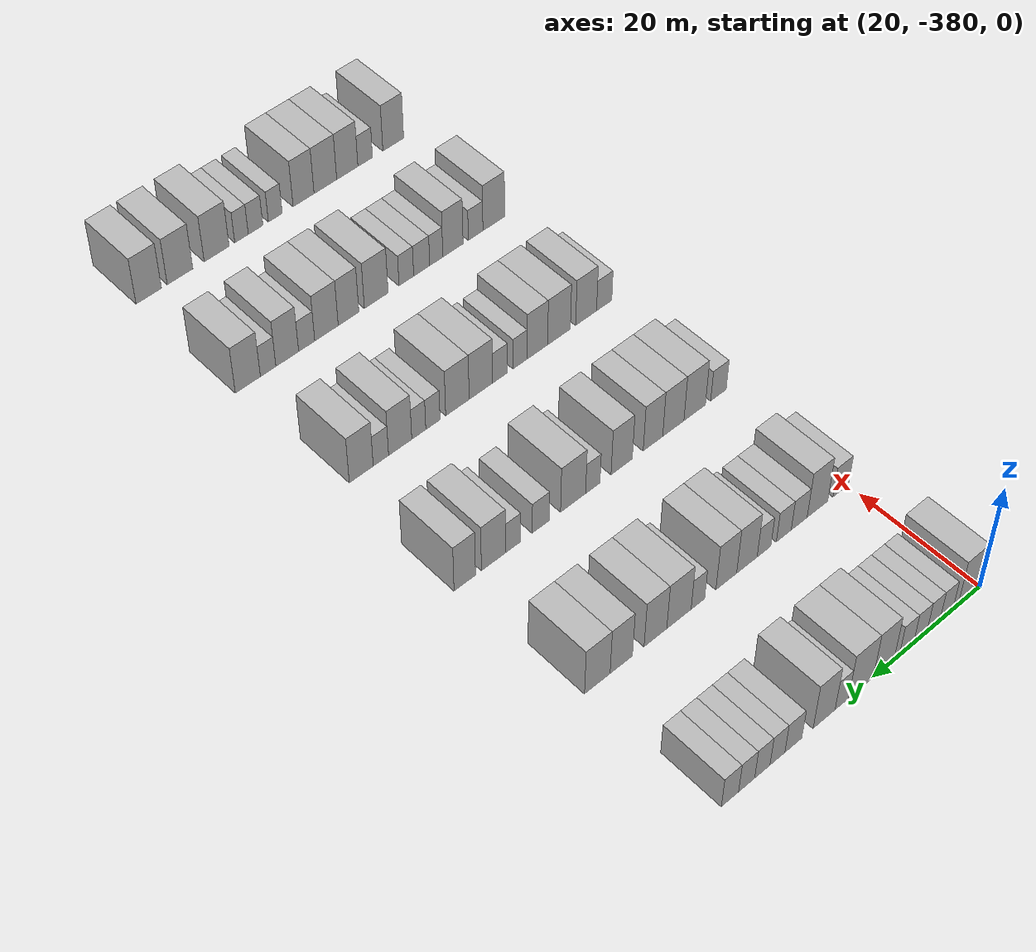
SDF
<sdf version="1.6">
 <world name="default">
  <model name="building_1">
   <static>1</static>
   <pose>25.0000 -377.9437 0 0.000000 0.000000 0.000000</pose>
   <link name="link">
    <pose>0 0 4.50 0 0 0</pose>
    <collision name="collision"><geometry><box><size>10.0000 4.1127 9.0000</size></box></geometry></collision>
    <visual name="visual">
     <cast_shadows>0</cast_shadows>
     <geometry><box><size>10.0000 4.1127 9.0000</size></box></geometry>
     <material>
      <script>
       <uri>model://HANNAS_wall/materials/scripts</uri>
       <uri>model://HANNAS_wall/materials/textures</uri>
       <name>vrc/HANNAS_wall</name>
      </script>
     </material>
    </visual>
   </link>
  </model>
  <model name="building_2">
   <static>1</static>
   <pose>25.0000 -373.6596 0 0.000000 0.000000 0.000000</pose>
   <link name="link">
    <pose>0 0 3.00 0 0 0</pose>
    <collision name="collision"><geometry><box><size>10.0000 2.4554 6.0000</size></box></geometry></collision>
    <visual name="visual">
     <cast_shadows>0</cast_shadows>
     <geometry><box><size>10.0000 2.4554 6.0000</size></box></geometry>
     <material>
      <script>
       <uri>model://HANNAS_wall/materials/scripts</uri>
       <uri>model://HANNAS_wall/materials/textures</uri>
       <name>vrc/HANNAS_wall</name>
      </script>
     </material>
    </visual>
   </link>
  </model>
  <model name="building_3">
   <static>1</static>
   <pose>25.0000 -371.2207 0 0.000000 0.000000 0.000000</pose>
   <link name="link">
    <pose>0 0 3.00 0 0 0</pose>
    <collision name="collision"><geometry><box><size>10.0000 2.4226 6.0000</size></box></geometry></collision>
    <visual name="visual">
     <cast_shadows>0</cast_shadows>
     <geometry><box><size>10.0000 2.4226 6.0000</size></box></geometry>
     <material>
      <script>
       <uri>model://HANNAS_wall/materials/scripts</uri>
       <uri>model://HANNAS_wall/materials/textures</uri>
       <name>vrc/HANNAS_wall</name>
      </script>
     </material>
    </visual>
   </link>
  </model>
  <model name="building_4">
   <static>1</static>
   <pose>25.0000 -368.7682 0 0.000000 0.000000 0.000000</pose>
   <link name="link">
    <pose>0 0 3.00 0 0 0</pose>
    <collision name="collision"><geometry><box><size>10.0000 2.4823 6.0000</size></box></geometry></collision>
    <visual name="visual">
     <cast_shadows>0</cast_shadows>
     <geometry><box><size>10.0000 2.4823 6.0000</size></box></geometry>
     <material>
      <script>
       <uri>model://HANNAS_wall/materials/scripts</uri>
       <uri>model://HANNAS_wall/materials/textures</uri>
       <name>vrc/HANNAS_wall</name>
      </script>
     </material>
    </visual>
   </link>
  </model>
  <model name="building_5">
   <static>1</static>
   <pose>25.0000 -366.2189 0 0.000000 0.000000 0.000000</pose>
   <link name="link">
    <pose>0 0 3.00 0 0 0</pose>
    <collision name="collision"><geometry><box><size>10.0000 2.6164 6.0000</size></box></geometry></collision>
    <visual name="visual">
     <cast_shadows>0</cast_shadows>
     <geometry><box><size>10.0000 2.6164 6.0000</size></box></geometry>
     <material>
      <script>
       <uri>model://HANNAS_wall/materials/scripts</uri>
       <uri>model://HANNAS_wall/materials/textures</uri>
       <name>vrc/HANNAS_wall</name>
      </script>
     </material>
    </visual>
   </link>
  </model>
  <model name="building_6">
   <static>1</static>
   <pose>25.0000 -362.0247 0 0.000000 0.000000 0.000000</pose>
   <link name="link">
    <pose>0 0 4.50 0 0 0</pose>
    <collision name="collision"><geometry><box><size>10.0000 3.7720 9.0000</size></box></geometry></collision>
    <visual name="visual">
     <cast_shadows>0</cast_shadows>
     <geometry><box><size>10.0000 3.7720 9.0000</size></box></geometry>
     <material>
      <script>
       <uri>model://HANNAS_wall/materials/scripts</uri>
       <uri>model://HANNAS_wall/materials/textures</uri>
       <name>vrc/HANNAS_wall</name>
      </script>
     </material>
    </visual>
   </link>
  </model>
  <model name="building_7">
   <static>1</static>
   <pose>25.0000 -357.9072 0 0.000000 0.000000 0.000000</pose>
   <link name="link">
    <pose>0 0 4.50 0 0 0</pose>
    <collision name="collision"><geometry><box><size>10.0000 4.4630 9.0000</size></box></geometry></collision>
    <visual name="visual">
     <cast_shadows>0</cast_shadows>
     <geometry><box><size>10.0000 4.4630 9.0000</size></box></geometry>
     <material>
      <script>
       <uri>model://HANNAS_wall/materials/scripts</uri>
       <uri>model://HANNAS_wall/materials/textures</uri>
       <name>vrc/HANNAS_wall</name>
      </script>
     </material>
    </visual>
   </link>
  </model>
  <model name="building_8">
   <static>1</static>
   <pose>25.0000 -354.4737 0 0.000000 0.000000 0.000000</pose>
   <link name="link">
    <pose>0 0 3.00 0 0 0</pose>
    <collision name="collision"><geometry><box><size>10.0000 2.4039 6.0000</size></box></geometry></collision>
    <visual name="visual">
     <cast_shadows>0</cast_shadows>
     <geometry><box><size>10.0000 2.4039 6.0000</size></box></geometry>
     <material>
      <script>
       <uri>model://HANNAS_wall/materials/scripts</uri>
       <uri>model://HANNAS_wall/materials/textures</uri>
       <name>vrc/HANNAS_wall</name>
      </script>
     </material>
    </visual>
   </link>
  </model>
  <model name="building_9">
   <static>1</static>
   <pose>25.0000 -351.3434 0 0.000000 0.000000 0.000000</pose>
   <link name="link">
    <pose>0 0 4.50 0 0 0</pose>
    <collision name="collision"><geometry><box><size>10.0000 3.8568 9.0000</size></box></geometry></collision>
    <visual name="visual">
     <cast_shadows>0</cast_shadows>
     <geometry><box><size>10.0000 3.8568 9.0000</size></box></geometry>
     <material>
      <script>
       <uri>model://HANNAS_wall/materials/scripts</uri>
       <uri>model://HANNAS_wall/materials/textures</uri>
       <name>vrc/HANNAS_wall</name>
      </script>
     </material>
    </visual>
   </link>
  </model>
  <model name="building_10">
   <static>1</static>
   <pose>25.0000 -345.9481 0 0.000000 0.000000 0.000000</pose>
   <link name="link">
    <pose>0 0 3.00 0 0 0</pose>
    <collision name="collision"><geometry><box><size>10.0000 2.9336 6.0000</size></box></geometry></collision>
    <visual name="visual">
     <cast_shadows>0</cast_shadows>
     <geometry><box><size>10.0000 2.9336 6.0000</size></box></geometry>
     <material>
      <script>
       <uri>model://HANNAS_wall/materials/scripts</uri>
       <uri>model://HANNAS_wall/materials/textures</uri>
       <name>vrc/HANNAS_wall</name>
      </script>
     </material>
    </visual>
   </link>
  </model>
  <model name="building_11">
   <static>1</static>
   <pose>25.0000 -343.1982 0 0.000000 0.000000 0.000000</pose>
   <link name="link">
    <pose>0 0 3.00 0 0 0</pose>
    <collision name="collision"><geometry><box><size>10.0000 2.5663 6.0000</size></box></geometry></collision>
    <visual name="visual">
     <cast_shadows>0</cast_shadows>
     <geometry><box><size>10.0000 2.5663 6.0000</size></box></geometry>
     <material>
      <script>
       <uri>model://HANNAS_wall/materials/scripts</uri>
       <uri>model://HANNAS_wall/materials/textures</uri>
       <name>vrc/HANNAS_wall</name>
      </script>
     </material>
    </visual>
   </link>
  </model>
  <model name="building_12">
   <static>1</static>
   <pose>25.0000 -340.6104 0 0.000000 0.000000 0.000000</pose>
   <link name="link">
    <pose>0 0 3.00 0 0 0</pose>
    <collision name="collision"><geometry><box><size>10.0000 2.6092 6.0000</size></box></geometry></collision>
    <visual name="visual">
     <cast_shadows>0</cast_shadows>
     <geometry><box><size>10.0000 2.6092 6.0000</size></box></geometry>
     <material>
      <script>
       <uri>model://HANNAS_wall/materials/scripts</uri>
       <uri>model://HANNAS_wall/materials/textures</uri>
       <name>vrc/HANNAS_wall</name>
      </script>
     </material>
    </visual>
   </link>
  </model>
  <model name="building_13">
   <static>1</static>
   <pose>25.0000 -337.9464 0 0.000000 0.000000 0.000000</pose>
   <link name="link">
    <pose>0 0 3.00 0 0 0</pose>
    <collision name="collision"><geometry><box><size>10.0000 2.7187 6.0000</size></box></geometry></collision>
    <visual name="visual">
     <cast_shadows>0</cast_shadows>
     <geometry><box><size>10.0000 2.7187 6.0000</size></box></geometry>
     <material>
      <script>
       <uri>model://HANNAS_wall/materials/scripts</uri>
       <uri>model://HANNAS_wall/materials/textures</uri>
       <name>vrc/HANNAS_wall</name>
      </script>
     </material>
    </visual>
   </link>
  </model>
  <model name="building_14">
   <static>1</static>
   <pose>25.0000 -335.1410 0 0.000000 0.000000 0.000000</pose>
   <link name="link">
    <pose>0 0 3.00 0 0 0</pose>
    <collision name="collision"><geometry><box><size>10.0000 2.8922 6.0000</size></box></geometry></collision>
    <visual name="visual">
     <cast_shadows>0</cast_shadows>
     <geometry><box><size>10.0000 2.8922 6.0000</size></box></geometry>
     <material>
      <script>
       <uri>model://HANNAS_wall/materials/scripts</uri>
       <uri>model://HANNAS_wall/materials/textures</uri>
       <name>vrc/HANNAS_wall</name>
      </script>
     </material>
    </visual>
   </link>
  </model>
  <model name="building_185">
   <static>1</static>
   <pose>47.0000 -378.5156 0 0.000000 0.000000 0.000000</pose>
   <link name="link">
    <pose>0 0 3.00 0 0 0</pose>
    <collision name="collision"><geometry><box><size>10.0000 2.9688 6.0000</size></box></geometry></collision>
    <visual name="visual">
     <cast_shadows>0</cast_shadows>
     <geometry><box><size>10.0000 2.9688 6.0000</size></box></geometry>
     <material>
      <script>
       <uri>model://HANNAS_wall/materials/scripts</uri>
       <uri>model://HANNAS_wall/materials/textures</uri>
       <name>vrc/HANNAS_wall</name>
      </script>
     </material>
    </visual>
   </link>
  </model>
  <model name="building_186">
   <static>1</static>
   <pose>47.0000 -374.0858 0 0.000000 0.000000 0.000000</pose>
   <link name="link">
    <pose>0 0 4.50 0 0 0</pose>
    <collision name="collision"><geometry><box><size>10.0000 3.8909 9.0000</size></box></geometry></collision>
    <visual name="visual">
     <cast_shadows>0</cast_shadows>
     <geometry><box><size>10.0000 3.8909 9.0000</size></box></geometry>
     <material>
      <script>
       <uri>model://HANNAS_wall/materials/scripts</uri>
       <uri>model://HANNAS_wall/materials/textures</uri>
       <name>vrc/HANNAS_wall</name>
      </script>
     </material>
    </visual>
   </link>
  </model>
  <model name="building_187">
   <static>1</static>
   <pose>47.0000 -370.6489 0 0.000000 0.000000 0.000000</pose>
   <link name="link">
    <pose>0 0 3.00 0 0 0</pose>
    <collision name="collision"><geometry><box><size>10.0000 2.9827 6.0000</size></box></geometry></collision>
    <visual name="visual">
     <cast_shadows>0</cast_shadows>
     <geometry><box><size>10.0000 2.9827 6.0000</size></box></geometry>
     <material>
      <script>
       <uri>model://HANNAS_wall/materials/scripts</uri>
       <uri>model://HANNAS_wall/materials/textures</uri>
       <name>vrc/HANNAS_wall</name>
      </script>
     </material>
    </visual>
   </link>
  </model>
  <model name="building_188">
   <static>1</static>
   <pose>47.0000 -367.7701 0 0.000000 0.000000 0.000000</pose>
   <link name="link">
    <pose>0 0 3.00 0 0 0</pose>
    <collision name="collision"><geometry><box><size>10.0000 2.7749 6.0000</size></box></geometry></collision>
    <visual name="visual">
     <cast_shadows>0</cast_shadows>
     <geometry><box><size>10.0000 2.7749 6.0000</size></box></geometry>
     <material>
      <script>
       <uri>model://HANNAS_wall/materials/scripts</uri>
       <uri>model://HANNAS_wall/materials/textures</uri>
       <name>vrc/HANNAS_wall</name>
      </script>
     </material>
    </visual>
   </link>
  </model>
  <model name="building_189">
   <static>1</static>
   <pose>47.0000 -364.1221 0 0.000000 0.000000 0.000000</pose>
   <link name="link">
    <pose>0 0 3.00 0 0 0</pose>
    <collision name="collision"><geometry><box><size>10.0000 2.5212 6.0000</size></box></geometry></collision>
    <visual name="visual">
     <cast_shadows>0</cast_shadows>
     <geometry><box><size>10.0000 2.5212 6.0000</size></box></geometry>
     <material>
      <script>
       <uri>model://HANNAS_wall/materials/scripts</uri>
       <uri>model://HANNAS_wall/materials/textures</uri>
       <name>vrc/HANNAS_wall</name>
      </script>
     </material>
    </visual>
   </link>
  </model>
  <model name="building_190">
   <static>1</static>
   <pose>47.0000 -360.9950 0 0.000000 0.000000 0.000000</pose>
   <link name="link">
    <pose>0 0 4.50 0 0 0</pose>
    <collision name="collision"><geometry><box><size>10.0000 3.7330 9.0000</size></box></geometry></collision>
    <visual name="visual">
     <cast_shadows>0</cast_shadows>
     <geometry><box><size>10.0000 3.7330 9.0000</size></box></geometry>
     <material>
      <script>
       <uri>model://HANNAS_wall/materials/scripts</uri>
       <uri>model://HANNAS_wall/materials/textures</uri>
       <name>vrc/HANNAS_wall</name>
      </script>
     </material>
    </visual>
   </link>
  </model>
  <model name="building_191">
   <static>1</static>
   <pose>47.0000 -357.2643 0 0.000000 0.000000 0.000000</pose>
   <link name="link">
    <pose>0 0 4.50 0 0 0</pose>
    <collision name="collision"><geometry><box><size>10.0000 3.7284 9.0000</size></box></geometry></collision>
    <visual name="visual">
     <cast_shadows>0</cast_shadows>
     <geometry><box><size>10.0000 3.7284 9.0000</size></box></geometry>
     <material>
      <script>
       <uri>model://HANNAS_wall/materials/scripts</uri>
       <uri>model://HANNAS_wall/materials/textures</uri>
       <name>vrc/HANNAS_wall</name>
      </script>
     </material>
    </visual>
   </link>
  </model>
  <model name="building_192">
   <static>1</static>
   <pose>47.0000 -352.1957 0 0.000000 0.000000 0.000000</pose>
   <link name="link">
    <pose>0 0 3.00 0 0 0</pose>
    <collision name="collision"><geometry><box><size>10.0000 2.4087 6.0000</size></box></geometry></collision>
    <visual name="visual">
     <cast_shadows>0</cast_shadows>
     <geometry><box><size>10.0000 2.4087 6.0000</size></box></geometry>
     <material>
      <script>
       <uri>model://HANNAS_wall/materials/scripts</uri>
       <uri>model://HANNAS_wall/materials/textures</uri>
       <name>vrc/HANNAS_wall</name>
      </script>
     </material>
    </visual>
   </link>
  </model>
  <model name="building_193">
   <static>1</static>
   <pose>47.0000 -348.8602 0 0.000000 0.000000 0.000000</pose>
   <link name="link">
    <pose>0 0 4.50 0 0 0</pose>
    <collision name="collision"><geometry><box><size>10.0000 4.2623 9.0000</size></box></geometry></collision>
    <visual name="visual">
     <cast_shadows>0</cast_shadows>
     <geometry><box><size>10.0000 4.2623 9.0000</size></box></geometry>
     <material>
      <script>
       <uri>model://HANNAS_wall/materials/scripts</uri>
       <uri>model://HANNAS_wall/materials/textures</uri>
       <name>vrc/HANNAS_wall</name>
      </script>
     </material>
    </visual>
   </link>
  </model>
  <model name="building_194">
   <static>1</static>
   <pose>47.0000 -344.7617 0 0.000000 0.000000 0.000000</pose>
   <link name="link">
    <pose>0 0 4.50 0 0 0</pose>
    <collision name="collision"><geometry><box><size>10.0000 3.9348 9.0000</size></box></geometry></collision>
    <visual name="visual">
     <cast_shadows>0</cast_shadows>
     <geometry><box><size>10.0000 3.9348 9.0000</size></box></geometry>
     <material>
      <script>
       <uri>model://HANNAS_wall/materials/scripts</uri>
       <uri>model://HANNAS_wall/materials/textures</uri>
       <name>vrc/HANNAS_wall</name>
      </script>
     </material>
    </visual>
   </link>
  </model>
  <model name="building_195">
   <static>1</static>
   <pose>47.0000 -338.8915 0 0.000000 0.000000 0.000000</pose>
   <link name="link">
    <pose>0 0 4.50 0 0 0</pose>
    <collision name="collision"><geometry><box><size>10.0000 3.8056 9.0000</size></box></geometry></collision>
    <visual name="visual">
     <cast_shadows>0</cast_shadows>
     <geometry><box><size>10.0000 3.8056 9.0000</size></box></geometry>
     <material>
      <script>
       <uri>model://HANNAS_wall/materials/scripts</uri>
       <uri>model://HANNAS_wall/materials/textures</uri>
       <name>vrc/HANNAS_wall</name>
      </script>
     </material>
    </visual>
   </link>
  </model>
  <model name="building_196">
   <static>1</static>
   <pose>47.0000 -334.8382 0 0.000000 0.000000 0.000000</pose>
   <link name="link">
    <pose>0 0 4.50 0 0 0</pose>
    <collision name="collision"><geometry><box><size>10.0000 4.3009 9.0000</size></box></geometry></collision>
    <visual name="visual">
     <cast_shadows>0</cast_shadows>
     <geometry><box><size>10.0000 4.3009 9.0000</size></box></geometry>
     <material>
      <script>
       <uri>model://HANNAS_wall/materials/scripts</uri>
       <uri>model://HANNAS_wall/materials/textures</uri>
       <name>vrc/HANNAS_wall</name>
      </script>
     </material>
    </visual>
   </link>
  </model>
  <model name="building_377">
   <static>1</static>
   <pose>69.0000 -378.5160 0 0.000000 0.000000 0.000000</pose>
   <link name="link">
    <pose>0 0 3.00 0 0 0</pose>
    <collision name="collision"><geometry><box><size>10.0000 2.9680 6.0000</size></box></geometry></collision>
    <visual name="visual">
     <cast_shadows>0</cast_shadows>
     <geometry><box><size>10.0000 2.9680 6.0000</size></box></geometry>
     <material>
      <script>
       <uri>model://HANNAS_wall/materials/scripts</uri>
       <uri>model://HANNAS_wall/materials/textures</uri>
       <name>vrc/HANNAS_wall</name>
      </script>
     </material>
    </visual>
   </link>
  </model>
  <model name="building_378">
   <static>1</static>
   <pose>69.0000 -373.9987 0 0.000000 0.000000 0.000000</pose>
   <link name="link">
    <pose>0 0 4.50 0 0 0</pose>
    <collision name="collision"><geometry><box><size>10.0000 4.0667 9.0000</size></box></geometry></collision>
    <visual name="visual">
     <cast_shadows>0</cast_shadows>
     <geometry><box><size>10.0000 4.0667 9.0000</size></box></geometry>
     <material>
      <script>
       <uri>model://HANNAS_wall/materials/scripts</uri>
       <uri>model://HANNAS_wall/materials/textures</uri>
       <name>vrc/HANNAS_wall</name>
      </script>
     </material>
    </visual>
   </link>
  </model>
  <model name="building_379">
   <static>1</static>
   <pose>69.0000 -369.9779 0 0.000000 0.000000 0.000000</pose>
   <link name="link">
    <pose>0 0 4.50 0 0 0</pose>
    <collision name="collision"><geometry><box><size>10.0000 3.9749 9.0000</size></box></geometry></collision>
    <visual name="visual">
     <cast_shadows>0</cast_shadows>
     <geometry><box><size>10.0000 3.9749 9.0000</size></box></geometry>
     <material>
      <script>
       <uri>model://HANNAS_wall/materials/scripts</uri>
       <uri>model://HANNAS_wall/materials/textures</uri>
       <name>vrc/HANNAS_wall</name>
      </script>
     </material>
    </visual>
   </link>
  </model>
  <model name="building_380">
   <static>1</static>
   <pose>69.0000 -366.1854 0 0.000000 0.000000 0.000000</pose>
   <link name="link">
    <pose>0 0 4.50 0 0 0</pose>
    <collision name="collision"><geometry><box><size>10.0000 3.6102 9.0000</size></box></geometry></collision>
    <visual name="visual">
     <cast_shadows>0</cast_shadows>
     <geometry><box><size>10.0000 3.6102 9.0000</size></box></geometry>
     <material>
      <script>
       <uri>model://HANNAS_wall/materials/scripts</uri>
       <uri>model://HANNAS_wall/materials/textures</uri>
       <name>vrc/HANNAS_wall</name>
      </script>
     </material>
    </visual>
   </link>
  </model>
  <model name="building_381">
   <static>1</static>
   <pose>69.0000 -360.4468 0 0.000000 0.000000 0.000000</pose>
   <link name="link">
    <pose>0 0 4.50 0 0 0</pose>
    <collision name="collision"><geometry><box><size>10.0000 3.8670 9.0000</size></box></geometry></collision>
    <visual name="visual">
     <cast_shadows>0</cast_shadows>
     <geometry><box><size>10.0000 3.8670 9.0000</size></box></geometry>
     <material>
      <script>
       <uri>model://HANNAS_wall/materials/scripts</uri>
       <uri>model://HANNAS_wall/materials/textures</uri>
       <name>vrc/HANNAS_wall</name>
      </script>
     </material>
    </visual>
   </link>
  </model>
  <model name="building_382">
   <static>1</static>
   <pose>69.0000 -355.2225 0 0.000000 0.000000 0.000000</pose>
   <link name="link">
    <pose>0 0 3.00 0 0 0</pose>
    <collision name="collision"><geometry><box><size>10.0000 2.5817 6.0000</size></box></geometry></collision>
    <visual name="visual">
     <cast_shadows>0</cast_shadows>
     <geometry><box><size>10.0000 2.5817 6.0000</size></box></geometry>
     <material>
      <script>
       <uri>model://HANNAS_wall/materials/scripts</uri>
       <uri>model://HANNAS_wall/materials/textures</uri>
       <name>vrc/HANNAS_wall</name>
      </script>
     </material>
    </visual>
   </link>
  </model>
  <model name="building_383">
   <static>1</static>
   <pose>69.0000 -351.7067 0 0.000000 0.000000 0.000000</pose>
   <link name="link">
    <pose>0 0 4.50 0 0 0</pose>
    <collision name="collision"><geometry><box><size>10.0000 4.4499 9.0000</size></box></geometry></collision>
    <visual name="visual">
     <cast_shadows>0</cast_shadows>
     <geometry><box><size>10.0000 4.4499 9.0000</size></box></geometry>
     <material>
      <script>
       <uri>model://HANNAS_wall/materials/scripts</uri>
       <uri>model://HANNAS_wall/materials/textures</uri>
       <name>vrc/HANNAS_wall</name>
      </script>
     </material>
    </visual>
   </link>
  </model>
  <model name="building_384">
   <static>1</static>
   <pose>69.0000 -345.9997 0 0.000000 0.000000 0.000000</pose>
   <link name="link">
    <pose>0 0 3.00 0 0 0</pose>
    <collision name="collision"><geometry><box><size>10.0000 2.9642 6.0000</size></box></geometry></collision>
    <visual name="visual">
     <cast_shadows>0</cast_shadows>
     <geometry><box><size>10.0000 2.9642 6.0000</size></box></geometry>
     <material>
      <script>
       <uri>model://HANNAS_wall/materials/scripts</uri>
       <uri>model://HANNAS_wall/materials/textures</uri>
       <name>vrc/HANNAS_wall</name>
      </script>
     </material>
    </visual>
   </link>
  </model>
  <model name="building_385">
   <static>1</static>
   <pose>69.0000 -341.2217 0 0.000000 0.000000 0.000000</pose>
   <link name="link">
    <pose>0 0 3.00 0 0 0</pose>
    <collision name="collision"><geometry><box><size>10.0000 2.5917 6.0000</size></box></geometry></collision>
    <visual name="visual">
     <cast_shadows>0</cast_shadows>
     <geometry><box><size>10.0000 2.5917 6.0000</size></box></geometry>
     <material>
      <script>
       <uri>model://HANNAS_wall/materials/scripts</uri>
       <uri>model://HANNAS_wall/materials/textures</uri>
       <name>vrc/HANNAS_wall</name>
      </script>
     </material>
    </visual>
   </link>
  </model>
  <model name="building_386">
   <static>1</static>
   <pose>69.0000 -337.8637 0 0.000000 0.000000 0.000000</pose>
   <link name="link">
    <pose>0 0 4.50 0 0 0</pose>
    <collision name="collision"><geometry><box><size>10.0000 4.1244 9.0000</size></box></geometry></collision>
    <visual name="visual">
     <cast_shadows>0</cast_shadows>
     <geometry><box><size>10.0000 4.1244 9.0000</size></box></geometry>
     <material>
      <script>
       <uri>model://HANNAS_wall/materials/scripts</uri>
       <uri>model://HANNAS_wall/materials/textures</uri>
       <name>vrc/HANNAS_wall</name>
      </script>
     </material>
    </visual>
   </link>
  </model>
  <model name="building_387">
   <static>1</static>
   <pose>69.0000 -332.9992 0 0.000000 0.000000 0.000000</pose>
   <link name="link">
    <pose>0 0 4.50 0 0 0</pose>
    <collision name="collision"><geometry><box><size>10.0000 3.6046 9.0000</size></box></geometry></collision>
    <visual name="visual">
     <cast_shadows>0</cast_shadows>
     <geometry><box><size>10.0000 3.6046 9.0000</size></box></geometry>
     <material>
      <script>
       <uri>model://HANNAS_wall/materials/scripts</uri>
       <uri>model://HANNAS_wall/materials/textures</uri>
       <name>vrc/HANNAS_wall</name>
      </script>
     </material>
    </visual>
   </link>
  </model>
  <model name="building_569">
   <static>1</static>
   <pose>91.0000 -378.5405 0 0.000000 0.000000 0.000000</pose>
   <link name="link">
    <pose>0 0 3.00 0 0 0</pose>
    <collision name="collision"><geometry><box><size>10.0000 2.9190 6.0000</size></box></geometry></collision>
    <visual name="visual">
     <cast_shadows>0</cast_shadows>
     <geometry><box><size>10.0000 2.9190 6.0000</size></box></geometry>
     <material>
      <script>
       <uri>model://HANNAS_wall/materials/scripts</uri>
       <uri>model://HANNAS_wall/materials/textures</uri>
       <name>vrc/HANNAS_wall</name>
      </script>
     </material>
    </visual>
   </link>
  </model>
  <model name="building_570">
   <static>1</static>
   <pose>91.0000 -375.0924 0 0.000000 0.000000 0.000000</pose>
   <link name="link">
    <pose>0 0 4.50 0 0 0</pose>
    <collision name="collision"><geometry><box><size>10.0000 3.9772 9.0000</size></box></geometry></collision>
    <visual name="visual">
     <cast_shadows>0</cast_shadows>
     <geometry><box><size>10.0000 3.9772 9.0000</size></box></geometry>
     <material>
      <script>
       <uri>model://HANNAS_wall/materials/scripts</uri>
       <uri>model://HANNAS_wall/materials/textures</uri>
       <name>vrc/HANNAS_wall</name>
      </script>
     </material>
    </visual>
   </link>
  </model>
  <model name="building_571">
   <static>1</static>
   <pose>91.0000 -369.9712 0 0.000000 0.000000 0.000000</pose>
   <link name="link">
    <pose>0 0 4.50 0 0 0</pose>
    <collision name="collision"><geometry><box><size>10.0000 4.2654 9.0000</size></box></geometry></collision>
    <visual name="visual">
     <cast_shadows>0</cast_shadows>
     <geometry><box><size>10.0000 4.2654 9.0000</size></box></geometry>
     <material>
      <script>
       <uri>model://HANNAS_wall/materials/scripts</uri>
       <uri>model://HANNAS_wall/materials/textures</uri>
       <name>vrc/HANNAS_wall</name>
      </script>
     </material>
    </visual>
   </link>
  </model>
  <model name="building_572">
   <static>1</static>
   <pose>91.0000 -365.9371 0 0.000000 0.000000 0.000000</pose>
   <link name="link">
    <pose>0 0 4.50 0 0 0</pose>
    <collision name="collision"><geometry><box><size>10.0000 3.8027 9.0000</size></box></geometry></collision>
    <visual name="visual">
     <cast_shadows>0</cast_shadows>
     <geometry><box><size>10.0000 3.8027 9.0000</size></box></geometry>
     <material>
      <script>
       <uri>model://HANNAS_wall/materials/scripts</uri>
       <uri>model://HANNAS_wall/materials/textures</uri>
       <name>vrc/HANNAS_wall</name>
      </script>
     </material>
    </visual>
   </link>
  </model>
  <model name="building_573">
   <static>1</static>
   <pose>91.0000 -362.7375 0 0.000000 0.000000 0.000000</pose>
   <link name="link">
    <pose>0 0 3.00 0 0 0</pose>
    <collision name="collision"><geometry><box><size>10.0000 2.5966 6.0000</size></box></geometry></collision>
    <visual name="visual">
     <cast_shadows>0</cast_shadows>
     <geometry><box><size>10.0000 2.5966 6.0000</size></box></geometry>
     <material>
      <script>
       <uri>model://HANNAS_wall/materials/scripts</uri>
       <uri>model://HANNAS_wall/materials/textures</uri>
       <name>vrc/HANNAS_wall</name>
      </script>
     </material>
    </visual>
   </link>
  </model>
  <model name="building_574">
   <static>1</static>
   <pose>91.0000 -359.0782 0 0.000000 0.000000 0.000000</pose>
   <link name="link">
    <pose>0 0 3.00 0 0 0</pose>
    <collision name="collision"><geometry><box><size>10.0000 2.7221 6.0000</size></box></geometry></collision>
    <visual name="visual">
     <cast_shadows>0</cast_shadows>
     <geometry><box><size>10.0000 2.7221 6.0000</size></box></geometry>
     <material>
      <script>
       <uri>model://HANNAS_wall/materials/scripts</uri>
       <uri>model://HANNAS_wall/materials/textures</uri>
       <name>vrc/HANNAS_wall</name>
      </script>
     </material>
    </visual>
   </link>
  </model>
  <model name="building_575">
   <static>1</static>
   <pose>91.0000 -355.5978 0 0.000000 0.000000 0.000000</pose>
   <link name="link">
    <pose>0 0 4.50 0 0 0</pose>
    <collision name="collision"><geometry><box><size>10.0000 4.2386 9.0000</size></box></geometry></collision>
    <visual name="visual">
     <cast_shadows>0</cast_shadows>
     <geometry><box><size>10.0000 4.2386 9.0000</size></box></geometry>
     <material>
      <script>
       <uri>model://HANNAS_wall/materials/scripts</uri>
       <uri>model://HANNAS_wall/materials/textures</uri>
       <name>vrc/HANNAS_wall</name>
      </script>
     </material>
    </visual>
   </link>
  </model>
  <model name="building_576">
   <static>1</static>
   <pose>91.0000 -351.3881 0 0.000000 0.000000 0.000000</pose>
   <link name="link">
    <pose>0 0 4.50 0 0 0</pose>
    <collision name="collision"><geometry><box><size>10.0000 4.1810 9.0000</size></box></geometry></collision>
    <visual name="visual">
     <cast_shadows>0</cast_shadows>
     <geometry><box><size>10.0000 4.1810 9.0000</size></box></geometry>
     <material>
      <script>
       <uri>model://HANNAS_wall/materials/scripts</uri>
       <uri>model://HANNAS_wall/materials/textures</uri>
       <name>vrc/HANNAS_wall</name>
      </script>
     </material>
    </visual>
   </link>
  </model>
  <model name="building_577">
   <static>1</static>
   <pose>91.0000 -347.0434 0 0.000000 0.000000 0.000000</pose>
   <link name="link">
    <pose>0 0 3.00 0 0 0</pose>
    <collision name="collision"><geometry><box><size>10.0000 2.5083 6.0000</size></box></geometry></collision>
    <visual name="visual">
     <cast_shadows>0</cast_shadows>
     <geometry><box><size>10.0000 2.5083 6.0000</size></box></geometry>
     <material>
      <script>
       <uri>model://HANNAS_wall/materials/scripts</uri>
       <uri>model://HANNAS_wall/materials/textures</uri>
       <name>vrc/HANNAS_wall</name>
      </script>
     </material>
    </visual>
   </link>
  </model>
  <model name="building_578">
   <static>1</static>
   <pose>91.0000 -344.5648 0 0.000000 0.000000 0.000000</pose>
   <link name="link">
    <pose>0 0 3.00 0 0 0</pose>
    <collision name="collision"><geometry><box><size>10.0000 2.4490 6.0000</size></box></geometry></collision>
    <visual name="visual">
     <cast_shadows>0</cast_shadows>
     <geometry><box><size>10.0000 2.4490 6.0000</size></box></geometry>
     <material>
      <script>
       <uri>model://HANNAS_wall/materials/scripts</uri>
       <uri>model://HANNAS_wall/materials/textures</uri>
       <name>vrc/HANNAS_wall</name>
      </script>
     </material>
    </visual>
   </link>
  </model>
  <model name="building_579">
   <static>1</static>
   <pose>91.0000 -341.3285 0 0.000000 0.000000 0.000000</pose>
   <link name="link">
    <pose>0 0 4.50 0 0 0</pose>
    <collision name="collision"><geometry><box><size>10.0000 4.0237 9.0000</size></box></geometry></collision>
    <visual name="visual">
     <cast_shadows>0</cast_shadows>
     <geometry><box><size>10.0000 4.0237 9.0000</size></box></geometry>
     <material>
      <script>
       <uri>model://HANNAS_wall/materials/scripts</uri>
       <uri>model://HANNAS_wall/materials/textures</uri>
       <name>vrc/HANNAS_wall</name>
      </script>
     </material>
    </visual>
   </link>
  </model>
  <model name="building_580">
   <static>1</static>
   <pose>91.0000 -337.9995 0 0.000000 0.000000 0.000000</pose>
   <link name="link">
    <pose>0 0 3.00 0 0 0</pose>
    <collision name="collision"><geometry><box><size>10.0000 2.6344 6.0000</size></box></geometry></collision>
    <visual name="visual">
     <cast_shadows>0</cast_shadows>
     <geometry><box><size>10.0000 2.6344 6.0000</size></box></geometry>
     <material>
      <script>
       <uri>model://HANNAS_wall/materials/scripts</uri>
       <uri>model://HANNAS_wall/materials/textures</uri>
       <name>vrc/HANNAS_wall</name>
      </script>
     </material>
    </visual>
   </link>
  </model>
  <model name="building_581">
   <static>1</static>
   <pose>91.0000 -334.6432 0 0.000000 0.000000 0.000000</pose>
   <link name="link">
    <pose>0 0 4.50 0 0 0</pose>
    <collision name="collision"><geometry><box><size>10.0000 4.0782 9.0000</size></box></geometry></collision>
    <visual name="visual">
     <cast_shadows>0</cast_shadows>
     <geometry><box><size>10.0000 4.0782 9.0000</size></box></geometry>
     <material>
      <script>
       <uri>model://HANNAS_wall/materials/scripts</uri>
       <uri>model://HANNAS_wall/materials/textures</uri>
       <name>vrc/HANNAS_wall</name>
      </script>
     </material>
    </visual>
   </link>
  </model>
  <model name="building_753">
   <static>1</static>
   <pose>113.0000 -377.9265 0 0.000000 0.000000 0.000000</pose>
   <link name="link">
    <pose>0 0 4.50 0 0 0</pose>
    <collision name="collision"><geometry><box><size>10.0000 4.1469 9.0000</size></box></geometry></collision>
    <visual name="visual">
     <cast_shadows>0</cast_shadows>
     <geometry><box><size>10.0000 4.1469 9.0000</size></box></geometry>
     <material>
      <script>
       <uri>model://HANNAS_wall/materials/scripts</uri>
       <uri>model://HANNAS_wall/materials/textures</uri>
       <name>vrc/HANNAS_wall</name>
      </script>
     </material>
    </visual>
   </link>
  </model>
  <model name="building_754">
   <static>1</static>
   <pose>113.0000 -374.4589 0 0.000000 0.000000 0.000000</pose>
   <link name="link">
    <pose>0 0 3.00 0 0 0</pose>
    <collision name="collision"><geometry><box><size>10.0000 2.7883 6.0000</size></box></geometry></collision>
    <visual name="visual">
     <cast_shadows>0</cast_shadows>
     <geometry><box><size>10.0000 2.7883 6.0000</size></box></geometry>
     <material>
      <script>
       <uri>model://HANNAS_wall/materials/scripts</uri>
       <uri>model://HANNAS_wall/materials/textures</uri>
       <name>vrc/HANNAS_wall</name>
      </script>
     </material>
    </visual>
   </link>
  </model>
  <model name="building_755">
   <static>1</static>
   <pose>113.0000 -370.1582 0 0.000000 0.000000 0.000000</pose>
   <link name="link">
    <pose>0 0 4.50 0 0 0</pose>
    <collision name="collision"><geometry><box><size>10.0000 3.8130 9.0000</size></box></geometry></collision>
    <visual name="visual">
     <cast_shadows>0</cast_shadows>
     <geometry><box><size>10.0000 3.8130 9.0000</size></box></geometry>
     <material>
      <script>
       <uri>model://HANNAS_wall/materials/scripts</uri>
       <uri>model://HANNAS_wall/materials/textures</uri>
       <name>vrc/HANNAS_wall</name>
      </script>
     </material>
    </visual>
   </link>
  </model>
  <model name="building_756">
   <static>1</static>
   <pose>113.0000 -367.0271 0 0.000000 0.000000 0.000000</pose>
   <link name="link">
    <pose>0 0 3.00 0 0 0</pose>
    <collision name="collision"><geometry><box><size>10.0000 2.4494 6.0000</size></box></geometry></collision>
    <visual name="visual">
     <cast_shadows>0</cast_shadows>
     <geometry><box><size>10.0000 2.4494 6.0000</size></box></geometry>
     <material>
      <script>
       <uri>model://HANNAS_wall/materials/scripts</uri>
       <uri>model://HANNAS_wall/materials/textures</uri>
       <name>vrc/HANNAS_wall</name>
      </script>
     </material>
    </visual>
   </link>
  </model>
  <model name="building_757">
   <static>1</static>
   <pose>113.0000 -364.3105 0 0.000000 0.000000 0.000000</pose>
   <link name="link">
    <pose>0 0 3.00 0 0 0</pose>
    <collision name="collision"><geometry><box><size>10.0000 2.9839 6.0000</size></box></geometry></collision>
    <visual name="visual">
     <cast_shadows>0</cast_shadows>
     <geometry><box><size>10.0000 2.9839 6.0000</size></box></geometry>
     <material>
      <script>
       <uri>model://HANNAS_wall/materials/scripts</uri>
       <uri>model://HANNAS_wall/materials/textures</uri>
       <name>vrc/HANNAS_wall</name>
      </script>
     </material>
    </visual>
   </link>
  </model>
  <model name="building_758">
   <static>1</static>
   <pose>113.0000 -361.4656 0 0.000000 0.000000 0.000000</pose>
   <link name="link">
    <pose>0 0 3.00 0 0 0</pose>
    <collision name="collision"><geometry><box><size>10.0000 2.7057 6.0000</size></box></geometry></collision>
    <visual name="visual">
     <cast_shadows>0</cast_shadows>
     <geometry><box><size>10.0000 2.7057 6.0000</size></box></geometry>
     <material>
      <script>
       <uri>model://HANNAS_wall/materials/scripts</uri>
       <uri>model://HANNAS_wall/materials/textures</uri>
       <name>vrc/HANNAS_wall</name>
      </script>
     </material>
    </visual>
   </link>
  </model>
  <model name="building_759">
   <static>1</static>
   <pose>113.0000 -355.9584 0 0.000000 0.000000 0.000000</pose>
   <link name="link">
    <pose>0 0 4.50 0 0 0</pose>
    <collision name="collision"><geometry><box><size>10.0000 4.3087 9.0000</size></box></geometry></collision>
    <visual name="visual">
     <cast_shadows>0</cast_shadows>
     <geometry><box><size>10.0000 4.3087 9.0000</size></box></geometry>
     <material>
      <script>
       <uri>model://HANNAS_wall/materials/scripts</uri>
       <uri>model://HANNAS_wall/materials/textures</uri>
       <name>vrc/HANNAS_wall</name>
      </script>
     </material>
    </visual>
   </link>
  </model>
  <model name="building_760">
   <static>1</static>
   <pose>113.0000 -350.9553 0 0.000000 0.000000 0.000000</pose>
   <link name="link">
    <pose>0 0 4.50 0 0 0</pose>
    <collision name="collision"><geometry><box><size>10.0000 3.6974 9.0000</size></box></geometry></collision>
    <visual name="visual">
     <cast_shadows>0</cast_shadows>
     <geometry><box><size>10.0000 3.6974 9.0000</size></box></geometry>
     <material>
      <script>
       <uri>model://HANNAS_wall/materials/scripts</uri>
       <uri>model://HANNAS_wall/materials/textures</uri>
       <name>vrc/HANNAS_wall</name>
      </script>
     </material>
    </visual>
   </link>
  </model>
  <model name="building_761">
   <static>1</static>
   <pose>113.0000 -347.0242 0 0.000000 0.000000 0.000000</pose>
   <link name="link">
    <pose>0 0 4.50 0 0 0</pose>
    <collision name="collision"><geometry><box><size>10.0000 4.1649 9.0000</size></box></geometry></collision>
    <visual name="visual">
     <cast_shadows>0</cast_shadows>
     <geometry><box><size>10.0000 4.1649 9.0000</size></box></geometry>
     <material>
      <script>
       <uri>model://HANNAS_wall/materials/scripts</uri>
       <uri>model://HANNAS_wall/materials/textures</uri>
       <name>vrc/HANNAS_wall</name>
      </script>
     </material>
    </visual>
   </link>
  </model>
  <model name="building_762">
   <static>1</static>
   <pose>113.0000 -343.5250 0 0.000000 0.000000 0.000000</pose>
   <link name="link">
    <pose>0 0 3.00 0 0 0</pose>
    <collision name="collision"><geometry><box><size>10.0000 2.8334 6.0000</size></box></geometry></collision>
    <visual name="visual">
     <cast_shadows>0</cast_shadows>
     <geometry><box><size>10.0000 2.8334 6.0000</size></box></geometry>
     <material>
      <script>
       <uri>model://HANNAS_wall/materials/scripts</uri>
       <uri>model://HANNAS_wall/materials/textures</uri>
       <name>vrc/HANNAS_wall</name>
      </script>
     </material>
    </visual>
   </link>
  </model>
  <model name="building_763">
   <static>1</static>
   <pose>113.0000 -340.1282 0 0.000000 0.000000 0.000000</pose>
   <link name="link">
    <pose>0 0 4.50 0 0 0</pose>
    <collision name="collision"><geometry><box><size>10.0000 3.9603 9.0000</size></box></geometry></collision>
    <visual name="visual">
     <cast_shadows>0</cast_shadows>
     <geometry><box><size>10.0000 3.9603 9.0000</size></box></geometry>
     <material>
      <script>
       <uri>model://HANNAS_wall/materials/scripts</uri>
       <uri>model://HANNAS_wall/materials/textures</uri>
       <name>vrc/HANNAS_wall</name>
      </script>
     </material>
    </visual>
   </link>
  </model>
  <model name="building_764">
   <static>1</static>
   <pose>113.0000 -336.8100 0 0.000000 0.000000 0.000000</pose>
   <link name="link">
    <pose>0 0 3.00 0 0 0</pose>
    <collision name="collision"><geometry><box><size>10.0000 2.6762 6.0000</size></box></geometry></collision>
    <visual name="visual">
     <cast_shadows>0</cast_shadows>
     <geometry><box><size>10.0000 2.6762 6.0000</size></box></geometry>
     <material>
      <script>
       <uri>model://HANNAS_wall/materials/scripts</uri>
       <uri>model://HANNAS_wall/materials/textures</uri>
       <name>vrc/HANNAS_wall</name>
      </script>
     </material>
    </visual>
   </link>
  </model>
  <model name="building_765">
   <static>1</static>
   <pose>113.0000 -333.3271 0 0.000000 0.000000 0.000000</pose>
   <link name="link">
    <pose>0 0 4.50 0 0 0</pose>
    <collision name="collision"><geometry><box><size>10.0000 4.2896 9.0000</size></box></geometry></collision>
    <visual name="visual">
     <cast_shadows>0</cast_shadows>
     <geometry><box><size>10.0000 4.2896 9.0000</size></box></geometry>
     <material>
      <script>
       <uri>model://HANNAS_wall/materials/scripts</uri>
       <uri>model://HANNAS_wall/materials/textures</uri>
       <name>vrc/HANNAS_wall</name>
      </script>
     </material>
    </visual>
   </link>
  </model>
  <model name="building_936">
   <static>1</static>
   <pose>135.0000 -377.9893 0 0.000000 0.000000 0.000000</pose>
   <link name="link">
    <pose>0 0 4.50 0 0 0</pose>
    <collision name="collision"><geometry><box><size>10.0000 4.0214 9.0000</size></box></geometry></collision>
    <visual name="visual">
     <cast_shadows>0</cast_shadows>
     <geometry><box><size>10.0000 4.0214 9.0000</size></box></geometry>
     <material>
      <script>
       <uri>model://HANNAS_wall/materials/scripts</uri>
       <uri>model://HANNAS_wall/materials/textures</uri>
       <name>vrc/HANNAS_wall</name>
      </script>
     </material>
    </visual>
   </link>
  </model>
  <model name="building_937">
   <static>1</static>
   <pose>135.0000 -372.5855 0 0.000000 0.000000 0.000000</pose>
   <link name="link">
    <pose>0 0 3.00 0 0 0</pose>
    <collision name="collision"><geometry><box><size>10.0000 2.7862 6.0000</size></box></geometry></collision>
    <visual name="visual">
     <cast_shadows>0</cast_shadows>
     <geometry><box><size>10.0000 2.7862 6.0000</size></box></geometry>
     <material>
      <script>
       <uri>model://HANNAS_wall/materials/scripts</uri>
       <uri>model://HANNAS_wall/materials/textures</uri>
       <name>vrc/HANNAS_wall</name>
      </script>
     </material>
    </visual>
   </link>
  </model>
  <model name="building_938">
   <static>1</static>
   <pose>135.0000 -369.1851 0 0.000000 0.000000 0.000000</pose>
   <link name="link">
    <pose>0 0 4.50 0 0 0</pose>
    <collision name="collision"><geometry><box><size>10.0000 4.0147 9.0000</size></box></geometry></collision>
    <visual name="visual">
     <cast_shadows>0</cast_shadows>
     <geometry><box><size>10.0000 4.0147 9.0000</size></box></geometry>
     <material>
      <script>
       <uri>model://HANNAS_wall/materials/scripts</uri>
       <uri>model://HANNAS_wall/materials/textures</uri>
       <name>vrc/HANNAS_wall</name>
      </script>
     </material>
    </visual>
   </link>
  </model>
  <model name="building_939">
   <static>1</static>
   <pose>135.0000 -365.0539 0 0.000000 0.000000 0.000000</pose>
   <link name="link">
    <pose>0 0 4.50 0 0 0</pose>
    <collision name="collision"><geometry><box><size>10.0000 4.2476 9.0000</size></box></geometry></collision>
    <visual name="visual">
     <cast_shadows>0</cast_shadows>
     <geometry><box><size>10.0000 4.2476 9.0000</size></box></geometry>
     <material>
      <script>
       <uri>model://HANNAS_wall/materials/scripts</uri>
       <uri>model://HANNAS_wall/materials/textures</uri>
       <name>vrc/HANNAS_wall</name>
      </script>
     </material>
    </visual>
   </link>
  </model>
  <model name="building_940">
   <static>1</static>
   <pose>135.0000 -360.9835 0 0.000000 0.000000 0.000000</pose>
   <link name="link">
    <pose>0 0 4.50 0 0 0</pose>
    <collision name="collision"><geometry><box><size>10.0000 3.8932 9.0000</size></box></geometry></collision>
    <visual name="visual">
     <cast_shadows>0</cast_shadows>
     <geometry><box><size>10.0000 3.8932 9.0000</size></box></geometry>
     <material>
      <script>
       <uri>model://HANNAS_wall/materials/scripts</uri>
       <uri>model://HANNAS_wall/materials/textures</uri>
       <name>vrc/HANNAS_wall</name>
      </script>
     </material>
    </visual>
   </link>
  </model>
  <model name="building_941">
   <static>1</static>
   <pose>135.0000 -355.7715 0 0.000000 0.000000 0.000000</pose>
   <link name="link">
    <pose>0 0 3.00 0 0 0</pose>
    <collision name="collision"><geometry><box><size>10.0000 2.5308 6.0000</size></box></geometry></collision>
    <visual name="visual">
     <cast_shadows>0</cast_shadows>
     <geometry><box><size>10.0000 2.5308 6.0000</size></box></geometry>
     <material>
      <script>
       <uri>model://HANNAS_wall/materials/scripts</uri>
       <uri>model://HANNAS_wall/materials/textures</uri>
       <name>vrc/HANNAS_wall</name>
      </script>
     </material>
    </visual>
   </link>
  </model>
  <model name="building_942">
   <static>1</static>
   <pose>135.0000 -352.1847 0 0.000000 0.000000 0.000000</pose>
   <link name="link">
    <pose>0 0 3.00 0 0 0</pose>
    <collision name="collision"><geometry><box><size>10.0000 2.6429 6.0000</size></box></geometry></collision>
    <visual name="visual">
     <cast_shadows>0</cast_shadows>
     <geometry><box><size>10.0000 2.6429 6.0000</size></box></geometry>
     <material>
      <script>
       <uri>model://HANNAS_wall/materials/scripts</uri>
       <uri>model://HANNAS_wall/materials/textures</uri>
       <name>vrc/HANNAS_wall</name>
      </script>
     </material>
    </visual>
   </link>
  </model>
  <model name="building_943">
   <static>1</static>
   <pose>135.0000 -349.6413 0 0.000000 0.000000 0.000000</pose>
   <link name="link">
    <pose>0 0 3.00 0 0 0</pose>
    <collision name="collision"><geometry><box><size>10.0000 2.4439 6.0000</size></box></geometry></collision>
    <visual name="visual">
     <cast_shadows>0</cast_shadows>
     <geometry><box><size>10.0000 2.4439 6.0000</size></box></geometry>
     <material>
      <script>
       <uri>model://HANNAS_wall/materials/scripts</uri>
       <uri>model://HANNAS_wall/materials/textures</uri>
       <name>vrc/HANNAS_wall</name>
      </script>
     </material>
    </visual>
   </link>
  </model>
  <model name="building_944">
   <static>1</static>
   <pose>135.0000 -345.1935 0 0.000000 0.000000 0.000000</pose>
   <link name="link">
    <pose>0 0 4.50 0 0 0</pose>
    <collision name="collision"><geometry><box><size>10.0000 4.4516 9.0000</size></box></geometry></collision>
    <visual name="visual">
     <cast_shadows>0</cast_shadows>
     <geometry><box><size>10.0000 4.4516 9.0000</size></box></geometry>
     <material>
      <script>
       <uri>model://HANNAS_wall/materials/scripts</uri>
       <uri>model://HANNAS_wall/materials/textures</uri>
       <name>vrc/HANNAS_wall</name>
      </script>
     </material>
    </visual>
   </link>
  </model>
  <model name="building_945">
   <static>1</static>
   <pose>135.0000 -338.7288 0 0.000000 0.000000 0.000000</pose>
   <link name="link">
    <pose>0 0 4.50 0 0 0</pose>
    <collision name="collision"><geometry><box><size>10.0000 4.4778 9.0000</size></box></geometry></collision>
    <visual name="visual">
     <cast_shadows>0</cast_shadows>
     <geometry><box><size>10.0000 4.4778 9.0000</size></box></geometry>
     <material>
      <script>
       <uri>model://HANNAS_wall/materials/scripts</uri>
       <uri>model://HANNAS_wall/materials/textures</uri>
       <name>vrc/HANNAS_wall</name>
      </script>
     </material>
    </visual>
   </link>
  </model>
  <model name="building_946">
   <static>1</static>
   <pose>135.0000 -333.2888 0 0.000000 0.000000 0.000000</pose>
   <link name="link">
    <pose>0 0 4.50 0 0 0</pose>
    <collision name="collision"><geometry><box><size>10.0000 4.4022 9.0000</size></box></geometry></collision>
    <visual name="visual">
     <cast_shadows>0</cast_shadows>
     <geometry><box><size>10.0000 4.4022 9.0000</size></box></geometry>
     <material>
      <script>
       <uri>model://HANNAS_wall/materials/scripts</uri>
       <uri>model://HANNAS_wall/materials/textures</uri>
       <name>vrc/HANNAS_wall</name>
      </script>
     </material>
    </visual>
   </link>
  </model>
 </world>
</sdf>
